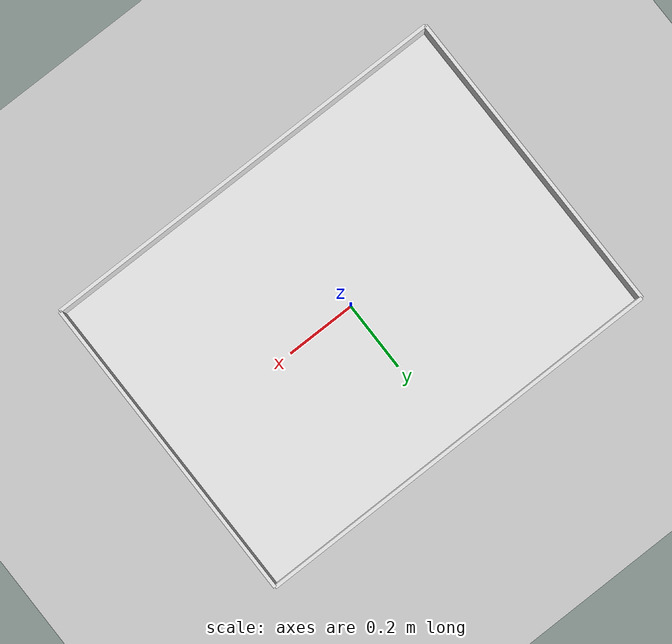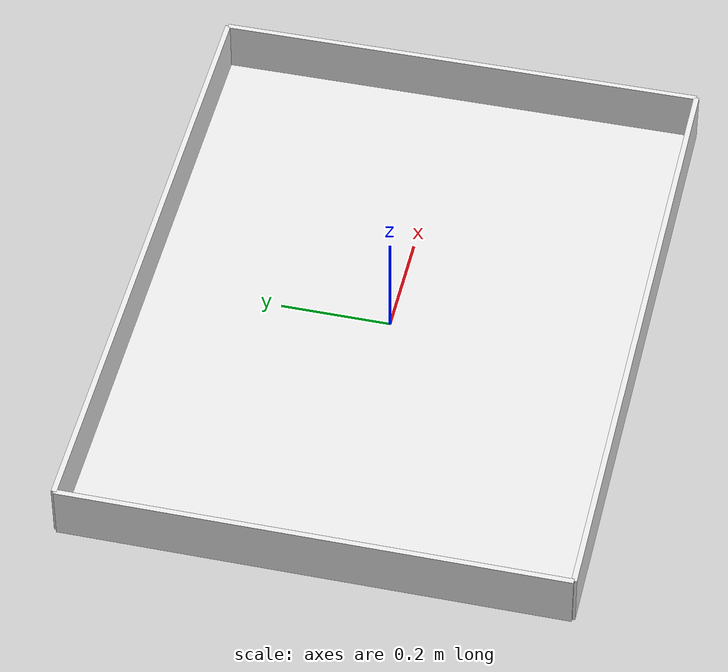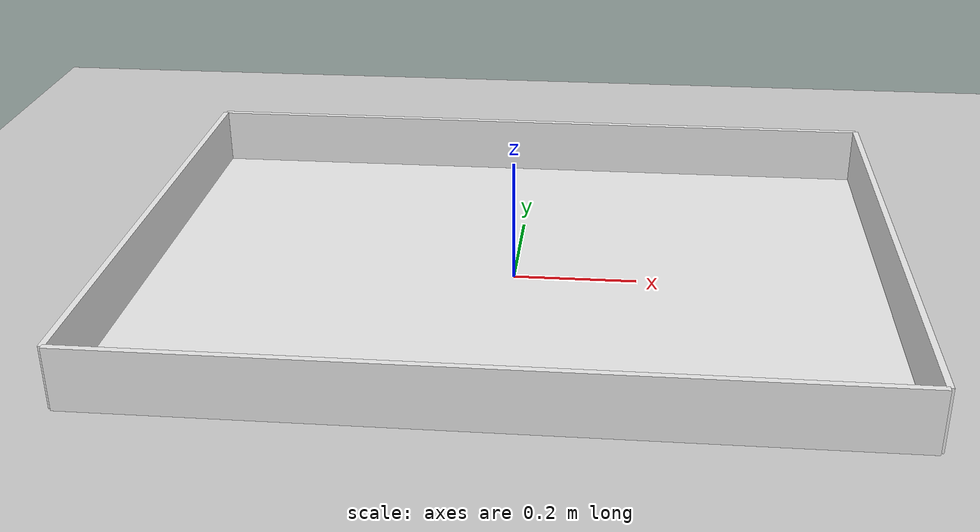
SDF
<sdf version="1.7">
  <world name="default">
  <model name="evacuation_zone">
    <static>true</static>
    <link name="base_link">
      <collision name="collision">
        <geometry>
          <box>
            <size>1.2 0.9 0.01</size>
          </box>
        </geometry>
        <pose>0 0 0 0 0 0</pose>
      </collision>
      <visual name="visual">
        <geometry>
          <box>
            <size>1.2 0.9 0.01</size>
          </box>
        </geometry>
        <material>
          <script>
            <name>Gazebo/White</name>
            <uri>file://media/materials/scripts/gazebo.material</uri>
          </script>
          <shader type="pixel"/>
        </material>
        <pose>0 0 0 0 0 0</pose>
      </visual>
    </link>
<link name="wall1">
      <collision name="collision">
        <geometry>
          <box>
            <size>0.01 0.9 0.1</size>
          </box>
        </geometry>
        <pose>0.6 0 0.05 0 0 0</pose>
      </collision>
      <visual name="visual">
        <geometry>
          <box>
            <size>0.01 0.9 0.1</size>
          </box>
        </geometry>
        <material>
          <script>
            <name>Gazebo/White</name>
            <uri>file://media/materials/scripts/gazebo.material</uri>
          </script>
          <shader type="pixel"/>
        </material>
        <pose>0.6 0 0.05 0 0 0</pose>
      </visual>
    </link>
    <link name="wall2">
      <collision name="collision">
        <geometry>
          <box>
            <size>1.2 0.01 0.1</size>
          </box>
        </geometry>
        <pose>0 0.45 0.05 0 0 0</pose>
      </collision>
      <visual name="visual">
        <geometry>
          <box>
            <size>1.2 0.01 0.1</size>
          </box>
        </geometry>
        <material>
          <script>
            <name>Gazebo/White</name>
            <uri>file://media/materials/scripts/gazebo.material</uri>
          </script>
          <shader type="pixel"/>
        </material>
        <pose>0 0.45 0.05 0 0 0</pose>
      </visual>
    </link>

    <link name="wall3">
      <collision name="collision">
        <geometry>
          <box>
            <size>0.01 0.9 0.1</size>
          </box>
        </geometry>
        <pose>-0.6 0 0.05 0 0 0</pose>
      </collision>
      <visual name="visual">
        <geometry>
          <box>
            <size>0.01 0.9 0.1</size>
          </box>
        </geometry>
        <material>
          <script>
            <name>Gazebo/White</name>
            <uri>file://media/materials/scripts/gazebo.material</uri>
          </script>
          <shader type="pixel"/>
        </material>
        <pose>-0.6 0 0.05 0 0 0</pose>
      </visual>
    </link>

    <link name="wall4">
      <collision name="collision">
        <geometry>
          <box>
            <size>1.2 0.01 0.1</size>
          </box>
        </geometry>
        <pose>0 -0.45 0.05 0 0 0</pose>
      </collision>
      <visual name="visual">
        <geometry>
          <box>
            <size>1.2 0.01 0.1</size>
          </box>
        </geometry>
        <material>
          <script>
            <name>Gazebo/White</name>
            <uri>file://media/materials/scripts/gazebo.material</uri>
          </script>
          <shader type="pixel"/>
        </material>
        <pose>0 -0.45 0.05 0 0 0</pose>
      </visual>
    </link>

  </model>

  <model name='ground_plane'>
      <static>1</static>
      <link name='link'>
        <collision name='collision'>
          <geometry>
            <plane>
              <normal>0 0 1</normal>
              <size>100 100</size>
            </plane>
          </geometry>
          <surface>
            <contact>
              <collide_bitmask>65535</collide_bitmask>
              <ode/>
            </contact>
            <friction>
              <ode>
                <mu>100</mu>
                <mu2>50</mu2>
              </ode>
              <torsional>
                <ode/>
              </torsional>
            </friction>
            <bounce/>
          </surface>
          <max_contacts>10</max_contacts>
        </collision>
        <visual name='visual'>
          <cast_shadows>0</cast_shadows>
          <geometry>
            <plane>
              <normal>0 0 1</normal>
              <size>100 100</size>
            </plane>
          </geometry>
          <material>
            <script>
              <uri>file://media/materials/scripts/gazebo.material</uri>
              <name>Gazebo/Grey</name>
            </script>
          </material>
        </visual>
        <self_collide>0</self_collide>
        <enable_wind>0</enable_wind>
        <kinematic>0</kinematic>
      </link>
    </model>
  </world>
</sdf>
